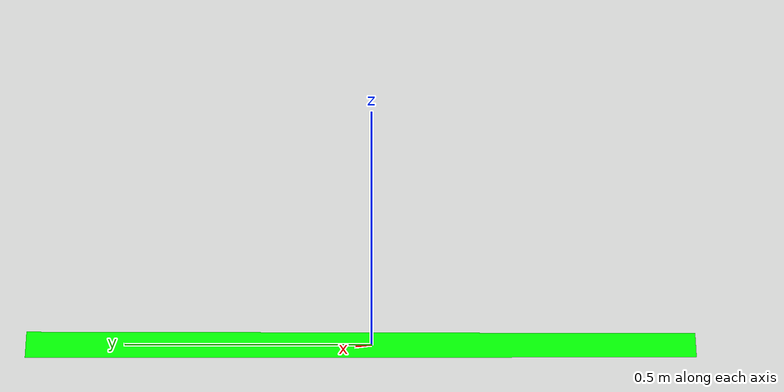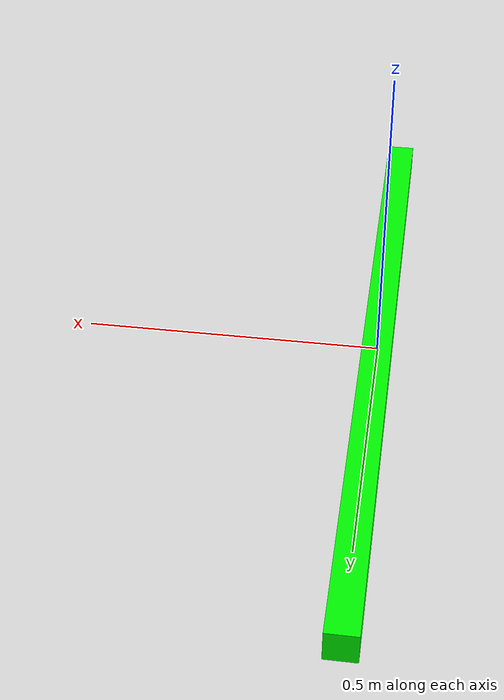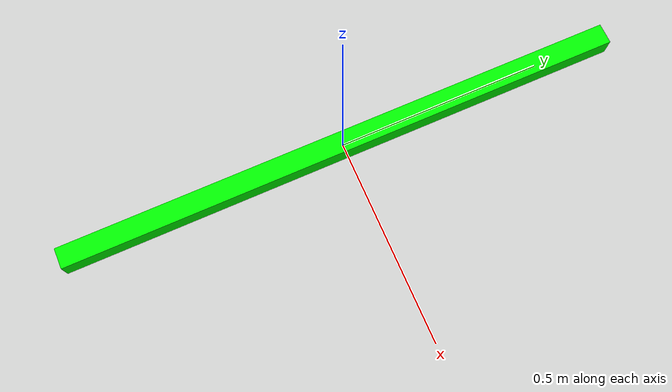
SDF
<?xml version="1.0" ?>
<sdf version="1.7">
    <model name="pool_cuboid"> <!-- Change the model name if necessary -->
        <pose>0 0 0 0 0 0</pose>
        <link name="cuboid">
            <inertial>
                <mass>0.2</mass>
                <inertia>
                    <ixx>0.0001</ixx>
                    <ixy>0.0</ixy>
                    <ixz>0.0</ixz>
                    <iyy>0.0001</iyy>
                    <iyz>0.0</iyz>
                    <izz>0.0002</izz>
                </inertia>
            </inertial>
            <collision name="collision">
                <geometry>
                    <box>
                        <size>0.05 1.37 0.05</size> <!-- Example dimensions for the cuboid -->
                    </box>
                </geometry>
            </collision>
            <visual name="visual">
                <geometry>
                    <box>
                        <size>0.05 1.37 0.05</size>
                    </box>
                </geometry>
                <material>
                    <ambient>0.0 1.0 0.0 1</ambient>
                    <diffuse>0.0 1.0 0.0 1</diffuse>
                    <specular>0.1 0.1 0.1 1</specular>
                </material>
            </visual>
            <!-- Additional features available in SDF 1.7 can be added here -->
        </link>
        <!-- Additional link, joint, sensor definitions, etc., can be added here -->
    </model>
</sdf>
